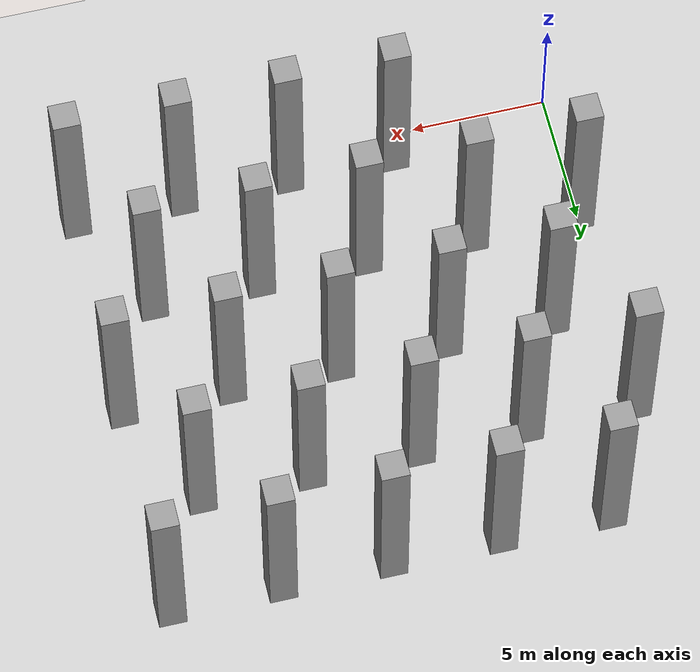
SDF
<sdf version="1.7">
 <world name="default">
  <model name="ground_plane">
   <static>1</static>
   <link name="link">
    <collision name="collision">
     <geometry><plane><normal>0 0 1</normal><size>100 100</size></plane></geometry>
     <surface>
      <contact><collide_bitmask>65535</collide_bitmask></contact>
      <friction><ode><mu>100</mu><mu2>50</mu2></ode></friction>
     </surface>
    </collision>
    <visual name="visual">
     <cast_shadows>0</cast_shadows>
     <geometry><plane><normal>0 0 1</normal><size>100 100</size></plane></geometry>
     <material>
      <script><uri>file://media/materials/scripts/gazebo.material</uri><name>Gazebo/Grey</name></script>
     </material>
    </visual>
   </link>
  </model>
  <model name="unit_box_static54">
   <link name="link">
    <inertial>
     <mass>1</mass>
     <inertia>
      <ixx>0.166667</ixx>
      <ixy>0</ixy>
      <ixz>0</ixz>
      <iyy>0.166667</iyy>
      <iyz>0</iyz>
      <izz>0.166667</izz>
     </inertia>
    </inertial>
    <visual name="visual">
     <geometry><box><size>1 1 8</size></box></geometry>
     <material>
      <script><name>Gazebo/Grey</name><uri>file://media/materials/scripts/gazebo.material</uri></script>
      <shader type="pixel"/>
     </material>
    </visual>
    <collision name="collision">
     <geometry><box><size>1 1 8</size></box></geometry>
     <surface>
      <friction>
       <ode><mu>1</mu><mu2>1</mu2><fdir1>0 0 0</fdir1><slip1>0</slip1><slip2>0</slip2></ode>
       <torsional>
        <coefficient>1</coefficient>
        <patch_radius>0</patch_radius>
        <surface_radius>0</surface_radius>
        <use_patch_radius>1</use_patch_radius>
        <ode><slip>0</slip></ode>
       </torsional>
      </friction>
      <bounce><restitution_coefficient>0</restitution_coefficient><threshold>1e+06</threshold></bounce>
      <contact>
       <collide_without_contact>0</collide_without_contact>
       <collide_without_contact_bitmask>1</collide_without_contact_bitmask>
       <collide_bitmask>1</collide_bitmask>
       <ode>
        <soft_cfm>0</soft_cfm>
        <soft_erp>0.2</soft_erp>
        <kp>1e+13</kp>
        <kd>1</kd>
        <max_vel>0.01</max_vel>
        <min_depth>0</min_depth>
       </ode>
       <bullet>
        <split_impulse>1</split_impulse>
        <split_impulse_penetration_threshold>-0.01</split_impulse_penetration_threshold>
        <soft_cfm>0</soft_cfm>
        <soft_erp>0.2</soft_erp>
        <kp>1e+13</kp>
        <kd>1</kd>
       </bullet>
      </contact>
     </surface>
    </collision>
   </link>
   <static>1</static>
   <pose>6 1 4 0 -0 0</pose>
  </model>
  <model name="unit_box_static55">
   <link name="link">
    <inertial>
     <mass>1</mass>
     <inertia>
      <ixx>0.166667</ixx>
      <ixy>0</ixy>
      <ixz>0</ixz>
      <iyy>0.166667</iyy>
      <iyz>0</iyz>
      <izz>0.166667</izz>
     </inertia>
    </inertial>
    <visual name="visual">
     <geometry><box><size>1 1 8</size></box></geometry>
     <material>
      <script><name>Gazebo/Grey</name><uri>file://media/materials/scripts/gazebo.material</uri></script>
      <shader type="pixel"/>
     </material>
    </visual>
    <collision name="collision">
     <geometry><box><size>1 1 8</size></box></geometry>
     <surface>
      <friction>
       <ode><mu>1</mu><mu2>1</mu2><fdir1>0 0 0</fdir1><slip1>0</slip1><slip2>0</slip2></ode>
       <torsional>
        <coefficient>1</coefficient>
        <patch_radius>0</patch_radius>
        <surface_radius>0</surface_radius>
        <use_patch_radius>1</use_patch_radius>
        <ode><slip>0</slip></ode>
       </torsional>
      </friction>
      <bounce><restitution_coefficient>0</restitution_coefficient><threshold>1e+06</threshold></bounce>
      <contact>
       <collide_without_contact>0</collide_without_contact>
       <collide_without_contact_bitmask>1</collide_without_contact_bitmask>
       <collide_bitmask>1</collide_bitmask>
       <ode>
        <soft_cfm>0</soft_cfm>
        <soft_erp>0.2</soft_erp>
        <kp>1e+13</kp>
        <kd>1</kd>
        <max_vel>0.01</max_vel>
        <min_depth>0</min_depth>
       </ode>
       <bullet>
        <split_impulse>1</split_impulse>
        <split_impulse_penetration_threshold>-0.01</split_impulse_penetration_threshold>
        <soft_cfm>0</soft_cfm>
        <soft_erp>0.2</soft_erp>
        <kp>1e+13</kp>
        <kd>1</kd>
       </bullet>
      </contact>
     </surface>
    </collision>
   </link>
   <static>1</static>
   <pose>10 1 4 0 -0 0</pose>
  </model>
  <model name="unit_box_static56">
   <link name="link">
    <inertial>
     <mass>1</mass>
     <inertia>
      <ixx>0.166667</ixx>
      <ixy>0</ixy>
      <ixz>0</ixz>
      <iyy>0.166667</iyy>
      <iyz>0</iyz>
      <izz>0.166667</izz>
     </inertia>
    </inertial>
    <visual name="visual">
     <geometry><box><size>1 1 8</size></box></geometry>
     <material>
      <script><name>Gazebo/Grey</name><uri>file://media/materials/scripts/gazebo.material</uri></script>
      <shader type="pixel"/>
     </material>
    </visual>
    <collision name="collision">
     <geometry><box><size>1 1 8</size></box></geometry>
     <surface>
      <friction>
       <ode><mu>1</mu><mu2>1</mu2><fdir1>0 0 0</fdir1><slip1>0</slip1><slip2>0</slip2></ode>
       <torsional>
        <coefficient>1</coefficient>
        <patch_radius>0</patch_radius>
        <surface_radius>0</surface_radius>
        <use_patch_radius>1</use_patch_radius>
        <ode><slip>0</slip></ode>
       </torsional>
      </friction>
      <bounce><restitution_coefficient>0</restitution_coefficient><threshold>1e+06</threshold></bounce>
      <contact>
       <collide_without_contact>0</collide_without_contact>
       <collide_without_contact_bitmask>1</collide_without_contact_bitmask>
       <collide_bitmask>1</collide_bitmask>
       <ode>
        <soft_cfm>0</soft_cfm>
        <soft_erp>0.2</soft_erp>
        <kp>1e+13</kp>
        <kd>1</kd>
        <max_vel>0.01</max_vel>
        <min_depth>0</min_depth>
       </ode>
       <bullet>
        <split_impulse>1</split_impulse>
        <split_impulse_penetration_threshold>-0.01</split_impulse_penetration_threshold>
        <soft_cfm>0</soft_cfm>
        <soft_erp>0.2</soft_erp>
        <kp>1e+13</kp>
        <kd>1</kd>
       </bullet>
      </contact>
     </surface>
    </collision>
   </link>
   <static>1</static>
   <pose>14 1 4 0 -0 0</pose>
  </model>
  <model name="unit_box_static57">
   <link name="link">
    <inertial>
     <mass>1</mass>
     <inertia>
      <ixx>0.166667</ixx>
      <ixy>0</ixy>
      <ixz>0</ixz>
      <iyy>0.166667</iyy>
      <iyz>0</iyz>
      <izz>0.166667</izz>
     </inertia>
    </inertial>
    <visual name="visual">
     <geometry><box><size>1 1 8</size></box></geometry>
     <material>
      <script><name>Gazebo/Grey</name><uri>file://media/materials/scripts/gazebo.material</uri></script>
      <shader type="pixel"/>
     </material>
    </visual>
    <collision name="collision">
     <geometry><box><size>1 1 8</size></box></geometry>
     <surface>
      <friction>
       <ode><mu>1</mu><mu2>1</mu2><fdir1>0 0 0</fdir1><slip1>0</slip1><slip2>0</slip2></ode>
       <torsional>
        <coefficient>1</coefficient>
        <patch_radius>0</patch_radius>
        <surface_radius>0</surface_radius>
        <use_patch_radius>1</use_patch_radius>
        <ode><slip>0</slip></ode>
       </torsional>
      </friction>
      <bounce><restitution_coefficient>0</restitution_coefficient><threshold>1e+06</threshold></bounce>
      <contact>
       <collide_without_contact>0</collide_without_contact>
       <collide_without_contact_bitmask>1</collide_without_contact_bitmask>
       <collide_bitmask>1</collide_bitmask>
       <ode>
        <soft_cfm>0</soft_cfm>
        <soft_erp>0.2</soft_erp>
        <kp>1e+13</kp>
        <kd>1</kd>
        <max_vel>0.01</max_vel>
        <min_depth>0</min_depth>
       </ode>
       <bullet>
        <split_impulse>1</split_impulse>
        <split_impulse_penetration_threshold>-0.01</split_impulse_penetration_threshold>
        <soft_cfm>0</soft_cfm>
        <soft_erp>0.2</soft_erp>
        <kp>1e+13</kp>
        <kd>1</kd>
       </bullet>
      </contact>
     </surface>
    </collision>
   </link>
   <static>1</static>
   <pose>18 1 4 0 -0 0</pose>
  </model>
  <model name="unit_box_static62">
   <link name="link">
    <inertial>
     <mass>1</mass>
     <inertia>
      <ixx>0.166667</ixx>
      <ixy>0</ixy>
      <ixz>0</ixz>
      <iyy>0.166667</iyy>
      <iyz>0</iyz>
      <izz>0.166667</izz>
     </inertia>
    </inertial>
    <visual name="visual">
     <geometry><box><size>1 1 8</size></box></geometry>
     <material>
      <script><name>Gazebo/Grey</name><uri>file://media/materials/scripts/gazebo.material</uri></script>
      <shader type="pixel"/>
     </material>
    </visual>
    <collision name="collision">
     <geometry><box><size>1 1 8</size></box></geometry>
     <surface>
      <friction>
       <ode><mu>1</mu><mu2>1</mu2><fdir1>0 0 0</fdir1><slip1>0</slip1><slip2>0</slip2></ode>
       <torsional>
        <coefficient>1</coefficient>
        <patch_radius>0</patch_radius>
        <surface_radius>0</surface_radius>
        <use_patch_radius>1</use_patch_radius>
        <ode><slip>0</slip></ode>
       </torsional>
      </friction>
      <bounce><restitution_coefficient>0</restitution_coefficient><threshold>1e+06</threshold></bounce>
      <contact>
       <collide_without_contact>0</collide_without_contact>
       <collide_without_contact_bitmask>1</collide_without_contact_bitmask>
       <collide_bitmask>1</collide_bitmask>
       <ode>
        <soft_cfm>0</soft_cfm>
        <soft_erp>0.2</soft_erp>
        <kp>1e+13</kp>
        <kd>1</kd>
        <max_vel>0.01</max_vel>
        <min_depth>0</min_depth>
       </ode>
       <bullet>
        <split_impulse>1</split_impulse>
        <split_impulse_penetration_threshold>-0.01</split_impulse_penetration_threshold>
        <soft_cfm>0</soft_cfm>
        <soft_erp>0.2</soft_erp>
        <kp>1e+13</kp>
        <kd>1</kd>
       </bullet>
      </contact>
     </surface>
    </collision>
   </link>
   <static>1</static>
   <pose>0 5 4 0 -0 0</pose>
  </model>
  <model name="unit_box_static63">
   <link name="link">
    <inertial>
     <mass>1</mass>
     <inertia>
      <ixx>0.166667</ixx>
      <ixy>0</ixy>
      <ixz>0</ixz>
      <iyy>0.166667</iyy>
      <iyz>0</iyz>
      <izz>0.166667</izz>
     </inertia>
    </inertial>
    <visual name="visual">
     <geometry><box><size>1 1 8</size></box></geometry>
     <material>
      <script><name>Gazebo/Grey</name><uri>file://media/materials/scripts/gazebo.material</uri></script>
      <shader type="pixel"/>
     </material>
    </visual>
    <collision name="collision">
     <geometry><box><size>1 1 8</size></box></geometry>
     <surface>
      <friction>
       <ode><mu>1</mu><mu2>1</mu2><fdir1>0 0 0</fdir1><slip1>0</slip1><slip2>0</slip2></ode>
       <torsional>
        <coefficient>1</coefficient>
        <patch_radius>0</patch_radius>
        <surface_radius>0</surface_radius>
        <use_patch_radius>1</use_patch_radius>
        <ode><slip>0</slip></ode>
       </torsional>
      </friction>
      <bounce><restitution_coefficient>0</restitution_coefficient><threshold>1e+06</threshold></bounce>
      <contact>
       <collide_without_contact>0</collide_without_contact>
       <collide_without_contact_bitmask>1</collide_without_contact_bitmask>
       <collide_bitmask>1</collide_bitmask>
       <ode>
        <soft_cfm>0</soft_cfm>
        <soft_erp>0.2</soft_erp>
        <kp>1e+13</kp>
        <kd>1</kd>
        <max_vel>0.01</max_vel>
        <min_depth>0</min_depth>
       </ode>
       <bullet>
        <split_impulse>1</split_impulse>
        <split_impulse_penetration_threshold>-0.01</split_impulse_penetration_threshold>
        <soft_cfm>0</soft_cfm>
        <soft_erp>0.2</soft_erp>
        <kp>1e+13</kp>
        <kd>1</kd>
       </bullet>
      </contact>
     </surface>
    </collision>
   </link>
   <static>1</static>
   <pose>4 5 4 0 -0 0</pose>
  </model>
  <model name="unit_box_static64">
   <link name="link">
    <inertial>
     <mass>1</mass>
     <inertia>
      <ixx>0.166667</ixx>
      <ixy>0</ixy>
      <ixz>0</ixz>
      <iyy>0.166667</iyy>
      <iyz>0</iyz>
      <izz>0.166667</izz>
     </inertia>
    </inertial>
    <visual name="visual">
     <geometry><box><size>1 1 8</size></box></geometry>
     <material>
      <script><name>Gazebo/Grey</name><uri>file://media/materials/scripts/gazebo.material</uri></script>
      <shader type="pixel"/>
     </material>
    </visual>
    <collision name="collision">
     <geometry><box><size>1 1 8</size></box></geometry>
     <surface>
      <friction>
       <ode><mu>1</mu><mu2>1</mu2><fdir1>0 0 0</fdir1><slip1>0</slip1><slip2>0</slip2></ode>
       <torsional>
        <coefficient>1</coefficient>
        <patch_radius>0</patch_radius>
        <surface_radius>0</surface_radius>
        <use_patch_radius>1</use_patch_radius>
        <ode><slip>0</slip></ode>
       </torsional>
      </friction>
      <bounce><restitution_coefficient>0</restitution_coefficient><threshold>1e+06</threshold></bounce>
      <contact>
       <collide_without_contact>0</collide_without_contact>
       <collide_without_contact_bitmask>1</collide_without_contact_bitmask>
       <collide_bitmask>1</collide_bitmask>
       <ode>
        <soft_cfm>0</soft_cfm>
        <soft_erp>0.2</soft_erp>
        <kp>1e+13</kp>
        <kd>1</kd>
        <max_vel>0.01</max_vel>
        <min_depth>0</min_depth>
       </ode>
       <bullet>
        <split_impulse>1</split_impulse>
        <split_impulse_penetration_threshold>-0.01</split_impulse_penetration_threshold>
        <soft_cfm>0</soft_cfm>
        <soft_erp>0.2</soft_erp>
        <kp>1e+13</kp>
        <kd>1</kd>
       </bullet>
      </contact>
     </surface>
    </collision>
   </link>
   <static>1</static>
   <pose>8 5 4 0 -0 0</pose>
  </model>
  <model name="unit_box_static65">
   <link name="link">
    <inertial>
     <mass>1</mass>
     <inertia>
      <ixx>0.166667</ixx>
      <ixy>0</ixy>
      <ixz>0</ixz>
      <iyy>0.166667</iyy>
      <iyz>0</iyz>
      <izz>0.166667</izz>
     </inertia>
    </inertial>
    <visual name="visual">
     <geometry><box><size>1 1 8</size></box></geometry>
     <material>
      <script><name>Gazebo/Grey</name><uri>file://media/materials/scripts/gazebo.material</uri></script>
      <shader type="pixel"/>
     </material>
    </visual>
    <collision name="collision">
     <geometry><box><size>1 1 8</size></box></geometry>
     <surface>
      <friction>
       <ode><mu>1</mu><mu2>1</mu2><fdir1>0 0 0</fdir1><slip1>0</slip1><slip2>0</slip2></ode>
       <torsional>
        <coefficient>1</coefficient>
        <patch_radius>0</patch_radius>
        <surface_radius>0</surface_radius>
        <use_patch_radius>1</use_patch_radius>
        <ode><slip>0</slip></ode>
       </torsional>
      </friction>
      <bounce><restitution_coefficient>0</restitution_coefficient><threshold>1e+06</threshold></bounce>
      <contact>
       <collide_without_contact>0</collide_without_contact>
       <collide_without_contact_bitmask>1</collide_without_contact_bitmask>
       <collide_bitmask>1</collide_bitmask>
       <ode>
        <soft_cfm>0</soft_cfm>
        <soft_erp>0.2</soft_erp>
        <kp>1e+13</kp>
        <kd>1</kd>
        <max_vel>0.01</max_vel>
        <min_depth>0</min_depth>
       </ode>
       <bullet>
        <split_impulse>1</split_impulse>
        <split_impulse_penetration_threshold>-0.01</split_impulse_penetration_threshold>
        <soft_cfm>0</soft_cfm>
        <soft_erp>0.2</soft_erp>
        <kp>1e+13</kp>
        <kd>1</kd>
       </bullet>
      </contact>
     </surface>
    </collision>
   </link>
   <static>1</static>
   <pose>12 5 4 0 -0 0</pose>
  </model>
  <model name="unit_box_static66">
   <link name="link">
    <inertial>
     <mass>1</mass>
     <inertia>
      <ixx>0.166667</ixx>
      <ixy>0</ixy>
      <ixz>0</ixz>
      <iyy>0.166667</iyy>
      <iyz>0</iyz>
      <izz>0.166667</izz>
     </inertia>
    </inertial>
    <visual name="visual">
     <geometry><box><size>1 1 8</size></box></geometry>
     <material>
      <script><name>Gazebo/Grey</name><uri>file://media/materials/scripts/gazebo.material</uri></script>
      <shader type="pixel"/>
     </material>
    </visual>
    <collision name="collision">
     <geometry><box><size>1 1 8</size></box></geometry>
     <surface>
      <friction>
       <ode><mu>1</mu><mu2>1</mu2><fdir1>0 0 0</fdir1><slip1>0</slip1><slip2>0</slip2></ode>
       <torsional>
        <coefficient>1</coefficient>
        <patch_radius>0</patch_radius>
        <surface_radius>0</surface_radius>
        <use_patch_radius>1</use_patch_radius>
        <ode><slip>0</slip></ode>
       </torsional>
      </friction>
      <bounce><restitution_coefficient>0</restitution_coefficient><threshold>1e+06</threshold></bounce>
      <contact>
       <collide_without_contact>0</collide_without_contact>
       <collide_without_contact_bitmask>1</collide_without_contact_bitmask>
       <collide_bitmask>1</collide_bitmask>
       <ode>
        <soft_cfm>0</soft_cfm>
        <soft_erp>0.2</soft_erp>
        <kp>1e+13</kp>
        <kd>1</kd>
        <max_vel>0.01</max_vel>
        <min_depth>0</min_depth>
       </ode>
       <bullet>
        <split_impulse>1</split_impulse>
        <split_impulse_penetration_threshold>-0.01</split_impulse_penetration_threshold>
        <soft_cfm>0</soft_cfm>
        <soft_erp>0.2</soft_erp>
        <kp>1e+13</kp>
        <kd>1</kd>
       </bullet>
      </contact>
     </surface>
    </collision>
   </link>
   <static>1</static>
   <pose>16 5 4 0 -0 0</pose>
  </model>
  <model name="unit_box_static72">
   <link name="link">
    <inertial>
     <mass>1</mass>
     <inertia>
      <ixx>0.166667</ixx>
      <ixy>0</ixy>
      <ixz>0</ixz>
      <iyy>0.166667</iyy>
      <iyz>0</iyz>
      <izz>0.166667</izz>
     </inertia>
    </inertial>
    <visual name="visual">
     <geometry><box><size>1 1 8</size></box></geometry>
     <material>
      <script><name>Gazebo/Grey</name><uri>file://media/materials/scripts/gazebo.material</uri></script>
      <shader type="pixel"/>
     </material>
    </visual>
    <collision name="collision">
     <geometry><box><size>1 1 8</size></box></geometry>
     <surface>
      <friction>
       <ode><mu>1</mu><mu2>1</mu2><fdir1>0 0 0</fdir1><slip1>0</slip1><slip2>0</slip2></ode>
       <torsional>
        <coefficient>1</coefficient>
        <patch_radius>0</patch_radius>
        <surface_radius>0</surface_radius>
        <use_patch_radius>1</use_patch_radius>
        <ode><slip>0</slip></ode>
       </torsional>
      </friction>
      <bounce><restitution_coefficient>0</restitution_coefficient><threshold>1e+06</threshold></bounce>
      <contact>
       <collide_without_contact>0</collide_without_contact>
       <collide_without_contact_bitmask>1</collide_without_contact_bitmask>
       <collide_bitmask>1</collide_bitmask>
       <ode>
        <soft_cfm>0</soft_cfm>
        <soft_erp>0.2</soft_erp>
        <kp>1e+13</kp>
        <kd>1</kd>
        <max_vel>0.01</max_vel>
        <min_depth>0</min_depth>
       </ode>
       <bullet>
        <split_impulse>1</split_impulse>
        <split_impulse_penetration_threshold>-0.01</split_impulse_penetration_threshold>
        <soft_cfm>0</soft_cfm>
        <soft_erp>0.2</soft_erp>
        <kp>1e+13</kp>
        <kd>1</kd>
       </bullet>
      </contact>
     </surface>
    </collision>
   </link>
   <static>1</static>
   <pose>2 9 4 0 -0 0</pose>
  </model>
  <model name="unit_box_static73">
   <link name="link">
    <inertial>
     <mass>1</mass>
     <inertia>
      <ixx>0.166667</ixx>
      <ixy>0</ixy>
      <ixz>0</ixz>
      <iyy>0.166667</iyy>
      <iyz>0</iyz>
      <izz>0.166667</izz>
     </inertia>
    </inertial>
    <visual name="visual">
     <geometry><box><size>1 1 8</size></box></geometry>
     <material>
      <script><name>Gazebo/Grey</name><uri>file://media/materials/scripts/gazebo.material</uri></script>
      <shader type="pixel"/>
     </material>
    </visual>
    <collision name="collision">
     <geometry><box><size>1 1 8</size></box></geometry>
     <surface>
      <friction>
       <ode><mu>1</mu><mu2>1</mu2><fdir1>0 0 0</fdir1><slip1>0</slip1><slip2>0</slip2></ode>
       <torsional>
        <coefficient>1</coefficient>
        <patch_radius>0</patch_radius>
        <surface_radius>0</surface_radius>
        <use_patch_radius>1</use_patch_radius>
        <ode><slip>0</slip></ode>
       </torsional>
      </friction>
      <bounce><restitution_coefficient>0</restitution_coefficient><threshold>1e+06</threshold></bounce>
      <contact>
       <collide_without_contact>0</collide_without_contact>
       <collide_without_contact_bitmask>1</collide_without_contact_bitmask>
       <collide_bitmask>1</collide_bitmask>
       <ode>
        <soft_cfm>0</soft_cfm>
        <soft_erp>0.2</soft_erp>
        <kp>1e+13</kp>
        <kd>1</kd>
        <max_vel>0.01</max_vel>
        <min_depth>0</min_depth>
       </ode>
       <bullet>
        <split_impulse>1</split_impulse>
        <split_impulse_penetration_threshold>-0.01</split_impulse_penetration_threshold>
        <soft_cfm>0</soft_cfm>
        <soft_erp>0.2</soft_erp>
        <kp>1e+13</kp>
        <kd>1</kd>
       </bullet>
      </contact>
     </surface>
    </collision>
   </link>
   <static>1</static>
   <pose>6 9 4 0 -0 0</pose>
  </model>
  <model name="unit_box_static74">
   <link name="link">
    <inertial>
     <mass>1</mass>
     <inertia>
      <ixx>0.166667</ixx>
      <ixy>0</ixy>
      <ixz>0</ixz>
      <iyy>0.166667</iyy>
      <iyz>0</iyz>
      <izz>0.166667</izz>
     </inertia>
    </inertial>
    <visual name="visual">
     <geometry><box><size>1 1 8</size></box></geometry>
     <material>
      <script><name>Gazebo/Grey</name><uri>file://media/materials/scripts/gazebo.material</uri></script>
      <shader type="pixel"/>
     </material>
    </visual>
    <collision name="collision">
     <geometry><box><size>1 1 8</size></box></geometry>
     <surface>
      <friction>
       <ode><mu>1</mu><mu2>1</mu2><fdir1>0 0 0</fdir1><slip1>0</slip1><slip2>0</slip2></ode>
       <torsional>
        <coefficient>1</coefficient>
        <patch_radius>0</patch_radius>
        <surface_radius>0</surface_radius>
        <use_patch_radius>1</use_patch_radius>
        <ode><slip>0</slip></ode>
       </torsional>
      </friction>
      <bounce><restitution_coefficient>0</restitution_coefficient><threshold>1e+06</threshold></bounce>
      <contact>
       <collide_without_contact>0</collide_without_contact>
       <collide_without_contact_bitmask>1</collide_without_contact_bitmask>
       <collide_bitmask>1</collide_bitmask>
       <ode>
        <soft_cfm>0</soft_cfm>
        <soft_erp>0.2</soft_erp>
        <kp>1e+13</kp>
        <kd>1</kd>
        <max_vel>0.01</max_vel>
        <min_depth>0</min_depth>
       </ode>
       <bullet>
        <split_impulse>1</split_impulse>
        <split_impulse_penetration_threshold>-0.01</split_impulse_penetration_threshold>
        <soft_cfm>0</soft_cfm>
        <soft_erp>0.2</soft_erp>
        <kp>1e+13</kp>
        <kd>1</kd>
       </bullet>
      </contact>
     </surface>
    </collision>
   </link>
   <static>1</static>
   <pose>10 9 4 0 -0 0</pose>
  </model>
  <model name="unit_box_static75">
   <link name="link">
    <inertial>
     <mass>1</mass>
     <inertia>
      <ixx>0.166667</ixx>
      <ixy>0</ixy>
      <ixz>0</ixz>
      <iyy>0.166667</iyy>
      <iyz>0</iyz>
      <izz>0.166667</izz>
     </inertia>
    </inertial>
    <visual name="visual">
     <geometry><box><size>1 1 8</size></box></geometry>
     <material>
      <script><name>Gazebo/Grey</name><uri>file://media/materials/scripts/gazebo.material</uri></script>
      <shader type="pixel"/>
     </material>
    </visual>
    <collision name="collision">
     <geometry><box><size>1 1 8</size></box></geometry>
     <surface>
      <friction>
       <ode><mu>1</mu><mu2>1</mu2><fdir1>0 0 0</fdir1><slip1>0</slip1><slip2>0</slip2></ode>
       <torsional>
        <coefficient>1</coefficient>
        <patch_radius>0</patch_radius>
        <surface_radius>0</surface_radius>
        <use_patch_radius>1</use_patch_radius>
        <ode><slip>0</slip></ode>
       </torsional>
      </friction>
      <bounce><restitution_coefficient>0</restitution_coefficient><threshold>1e+06</threshold></bounce>
      <contact>
       <collide_without_contact>0</collide_without_contact>
       <collide_without_contact_bitmask>1</collide_without_contact_bitmask>
       <collide_bitmask>1</collide_bitmask>
       <ode>
        <soft_cfm>0</soft_cfm>
        <soft_erp>0.2</soft_erp>
        <kp>1e+13</kp>
        <kd>1</kd>
        <max_vel>0.01</max_vel>
        <min_depth>0</min_depth>
       </ode>
       <bullet>
        <split_impulse>1</split_impulse>
        <split_impulse_penetration_threshold>-0.01</split_impulse_penetration_threshold>
        <soft_cfm>0</soft_cfm>
        <soft_erp>0.2</soft_erp>
        <kp>1e+13</kp>
        <kd>1</kd>
       </bullet>
      </contact>
     </surface>
    </collision>
   </link>
   <static>1</static>
   <pose>14 9 4 0 -0 0</pose>
  </model>
  <model name="unit_box_static76">
   <link name="link">
    <inertial>
     <mass>1</mass>
     <inertia>
      <ixx>0.166667</ixx>
      <ixy>0</ixy>
      <ixz>0</ixz>
      <iyy>0.166667</iyy>
      <iyz>0</iyz>
      <izz>0.166667</izz>
     </inertia>
    </inertial>
    <visual name="visual">
     <geometry><box><size>1 1 8</size></box></geometry>
     <material>
      <script><name>Gazebo/Grey</name><uri>file://media/materials/scripts/gazebo.material</uri></script>
      <shader type="pixel"/>
     </material>
    </visual>
    <collision name="collision">
     <geometry><box><size>1 1 8</size></box></geometry>
     <surface>
      <friction>
       <ode><mu>1</mu><mu2>1</mu2><fdir1>0 0 0</fdir1><slip1>0</slip1><slip2>0</slip2></ode>
       <torsional>
        <coefficient>1</coefficient>
        <patch_radius>0</patch_radius>
        <surface_radius>0</surface_radius>
        <use_patch_radius>1</use_patch_radius>
        <ode><slip>0</slip></ode>
       </torsional>
      </friction>
      <bounce><restitution_coefficient>0</restitution_coefficient><threshold>1e+06</threshold></bounce>
      <contact>
       <collide_without_contact>0</collide_without_contact>
       <collide_without_contact_bitmask>1</collide_without_contact_bitmask>
       <collide_bitmask>1</collide_bitmask>
       <ode>
        <soft_cfm>0</soft_cfm>
        <soft_erp>0.2</soft_erp>
        <kp>1e+13</kp>
        <kd>1</kd>
        <max_vel>0.01</max_vel>
        <min_depth>0</min_depth>
       </ode>
       <bullet>
        <split_impulse>1</split_impulse>
        <split_impulse_penetration_threshold>-0.01</split_impulse_penetration_threshold>
        <soft_cfm>0</soft_cfm>
        <soft_erp>0.2</soft_erp>
        <kp>1e+13</kp>
        <kd>1</kd>
       </bullet>
      </contact>
     </surface>
    </collision>
   </link>
   <static>1</static>
   <pose>18 9 4 0 -0 0</pose>
  </model>
  <model name="unit_box_static81">
   <link name="link">
    <inertial>
     <mass>1</mass>
     <inertia>
      <ixx>0.166667</ixx>
      <ixy>0</ixy>
      <ixz>0</ixz>
      <iyy>0.166667</iyy>
      <iyz>0</iyz>
      <izz>0.166667</izz>
     </inertia>
    </inertial>
    <visual name="visual">
     <geometry><box><size>1 1 8</size></box></geometry>
     <material>
      <script><name>Gazebo/Grey</name><uri>file://media/materials/scripts/gazebo.material</uri></script>
      <shader type="pixel"/>
     </material>
    </visual>
    <collision name="collision">
     <geometry><box><size>1 1 8</size></box></geometry>
     <surface>
      <friction>
       <ode><mu>1</mu><mu2>1</mu2><fdir1>0 0 0</fdir1><slip1>0</slip1><slip2>0</slip2></ode>
       <torsional>
        <coefficient>1</coefficient>
        <patch_radius>0</patch_radius>
        <surface_radius>0</surface_radius>
        <use_patch_radius>1</use_patch_radius>
        <ode><slip>0</slip></ode>
       </torsional>
      </friction>
      <bounce><restitution_coefficient>0</restitution_coefficient><threshold>1e+06</threshold></bounce>
      <contact>
       <collide_without_contact>0</collide_without_contact>
       <collide_without_contact_bitmask>1</collide_without_contact_bitmask>
       <collide_bitmask>1</collide_bitmask>
       <ode>
        <soft_cfm>0</soft_cfm>
        <soft_erp>0.2</soft_erp>
        <kp>1e+13</kp>
        <kd>1</kd>
        <max_vel>0.01</max_vel>
        <min_depth>0</min_depth>
       </ode>
       <bullet>
        <split_impulse>1</split_impulse>
        <split_impulse_penetration_threshold>-0.01</split_impulse_penetration_threshold>
        <soft_cfm>0</soft_cfm>
        <soft_erp>0.2</soft_erp>
        <kp>1e+13</kp>
        <kd>1</kd>
       </bullet>
      </contact>
     </surface>
    </collision>
   </link>
   <static>1</static>
   <pose>0 13 4 0 -0 0</pose>
  </model>
  <model name="unit_box_static82">
   <link name="link">
    <inertial>
     <mass>1</mass>
     <inertia>
      <ixx>0.166667</ixx>
      <ixy>0</ixy>
      <ixz>0</ixz>
      <iyy>0.166667</iyy>
      <iyz>0</iyz>
      <izz>0.166667</izz>
     </inertia>
    </inertial>
    <visual name="visual">
     <geometry><box><size>1 1 8</size></box></geometry>
     <material>
      <script><name>Gazebo/Grey</name><uri>file://media/materials/scripts/gazebo.material</uri></script>
      <shader type="pixel"/>
     </material>
    </visual>
    <collision name="collision">
     <geometry><box><size>1 1 8</size></box></geometry>
     <surface>
      <friction>
       <ode><mu>1</mu><mu2>1</mu2><fdir1>0 0 0</fdir1><slip1>0</slip1><slip2>0</slip2></ode>
       <torsional>
        <coefficient>1</coefficient>
        <patch_radius>0</patch_radius>
        <surface_radius>0</surface_radius>
        <use_patch_radius>1</use_patch_radius>
        <ode><slip>0</slip></ode>
       </torsional>
      </friction>
      <bounce><restitution_coefficient>0</restitution_coefficient><threshold>1e+06</threshold></bounce>
      <contact>
       <collide_without_contact>0</collide_without_contact>
       <collide_without_contact_bitmask>1</collide_without_contact_bitmask>
       <collide_bitmask>1</collide_bitmask>
       <ode>
        <soft_cfm>0</soft_cfm>
        <soft_erp>0.2</soft_erp>
        <kp>1e+13</kp>
        <kd>1</kd>
        <max_vel>0.01</max_vel>
        <min_depth>0</min_depth>
       </ode>
       <bullet>
        <split_impulse>1</split_impulse>
        <split_impulse_penetration_threshold>-0.01</split_impulse_penetration_threshold>
        <soft_cfm>0</soft_cfm>
        <soft_erp>0.2</soft_erp>
        <kp>1e+13</kp>
        <kd>1</kd>
       </bullet>
      </contact>
     </surface>
    </collision>
   </link>
   <static>1</static>
   <pose>4 13 4 0 -0 0</pose>
  </model>
  <model name="unit_box_static83">
   <link name="link">
    <inertial>
     <mass>1</mass>
     <inertia>
      <ixx>0.166667</ixx>
      <ixy>0</ixy>
      <ixz>0</ixz>
      <iyy>0.166667</iyy>
      <iyz>0</iyz>
      <izz>0.166667</izz>
     </inertia>
    </inertial>
    <visual name="visual">
     <geometry><box><size>1 1 8</size></box></geometry>
     <material>
      <script><name>Gazebo/Grey</name><uri>file://media/materials/scripts/gazebo.material</uri></script>
      <shader type="pixel"/>
     </material>
    </visual>
    <collision name="collision">
     <geometry><box><size>1 1 8</size></box></geometry>
     <surface>
      <friction>
       <ode><mu>1</mu><mu2>1</mu2><fdir1>0 0 0</fdir1><slip1>0</slip1><slip2>0</slip2></ode>
       <torsional>
        <coefficient>1</coefficient>
        <patch_radius>0</patch_radius>
        <surface_radius>0</surface_radius>
        <use_patch_radius>1</use_patch_radius>
        <ode><slip>0</slip></ode>
       </torsional>
      </friction>
      <bounce><restitution_coefficient>0</restitution_coefficient><threshold>1e+06</threshold></bounce>
      <contact>
       <collide_without_contact>0</collide_without_contact>
       <collide_without_contact_bitmask>1</collide_without_contact_bitmask>
       <collide_bitmask>1</collide_bitmask>
       <ode>
        <soft_cfm>0</soft_cfm>
        <soft_erp>0.2</soft_erp>
        <kp>1e+13</kp>
        <kd>1</kd>
        <max_vel>0.01</max_vel>
        <min_depth>0</min_depth>
       </ode>
       <bullet>
        <split_impulse>1</split_impulse>
        <split_impulse_penetration_threshold>-0.01</split_impulse_penetration_threshold>
        <soft_cfm>0</soft_cfm>
        <soft_erp>0.2</soft_erp>
        <kp>1e+13</kp>
        <kd>1</kd>
       </bullet>
      </contact>
     </surface>
    </collision>
   </link>
   <static>1</static>
   <pose>8 13 4 0 -0 0</pose>
  </model>
  <model name="unit_box_static84">
   <link name="link">
    <inertial>
     <mass>1</mass>
     <inertia>
      <ixx>0.166667</ixx>
      <ixy>0</ixy>
      <ixz>0</ixz>
      <iyy>0.166667</iyy>
      <iyz>0</iyz>
      <izz>0.166667</izz>
     </inertia>
    </inertial>
    <visual name="visual">
     <geometry><box><size>1 1 8</size></box></geometry>
     <material>
      <script><name>Gazebo/Grey</name><uri>file://media/materials/scripts/gazebo.material</uri></script>
      <shader type="pixel"/>
     </material>
    </visual>
    <collision name="collision">
     <geometry><box><size>1 1 8</size></box></geometry>
     <surface>
      <friction>
       <ode><mu>1</mu><mu2>1</mu2><fdir1>0 0 0</fdir1><slip1>0</slip1><slip2>0</slip2></ode>
       <torsional>
        <coefficient>1</coefficient>
        <patch_radius>0</patch_radius>
        <surface_radius>0</surface_radius>
        <use_patch_radius>1</use_patch_radius>
        <ode><slip>0</slip></ode>
       </torsional>
      </friction>
      <bounce><restitution_coefficient>0</restitution_coefficient><threshold>1e+06</threshold></bounce>
      <contact>
       <collide_without_contact>0</collide_without_contact>
       <collide_without_contact_bitmask>1</collide_without_contact_bitmask>
       <collide_bitmask>1</collide_bitmask>
       <ode>
        <soft_cfm>0</soft_cfm>
        <soft_erp>0.2</soft_erp>
        <kp>1e+13</kp>
        <kd>1</kd>
        <max_vel>0.01</max_vel>
        <min_depth>0</min_depth>
       </ode>
       <bullet>
        <split_impulse>1</split_impulse>
        <split_impulse_penetration_threshold>-0.01</split_impulse_penetration_threshold>
        <soft_cfm>0</soft_cfm>
        <soft_erp>0.2</soft_erp>
        <kp>1e+13</kp>
        <kd>1</kd>
       </bullet>
      </contact>
     </surface>
    </collision>
   </link>
   <static>1</static>
   <pose>12 13 4 0 -0 0</pose>
  </model>
  <model name="unit_box_static85">
   <link name="link">
    <inertial>
     <mass>1</mass>
     <inertia>
      <ixx>0.166667</ixx>
      <ixy>0</ixy>
      <ixz>0</ixz>
      <iyy>0.166667</iyy>
      <iyz>0</iyz>
      <izz>0.166667</izz>
     </inertia>
    </inertial>
    <visual name="visual">
     <geometry><box><size>1 1 8</size></box></geometry>
     <material>
      <script><name>Gazebo/Grey</name><uri>file://media/materials/scripts/gazebo.material</uri></script>
      <shader type="pixel"/>
     </material>
    </visual>
    <collision name="collision">
     <geometry><box><size>1 1 8</size></box></geometry>
     <surface>
      <friction>
       <ode><mu>1</mu><mu2>1</mu2><fdir1>0 0 0</fdir1><slip1>0</slip1><slip2>0</slip2></ode>
       <torsional>
        <coefficient>1</coefficient>
        <patch_radius>0</patch_radius>
        <surface_radius>0</surface_radius>
        <use_patch_radius>1</use_patch_radius>
        <ode><slip>0</slip></ode>
       </torsional>
      </friction>
      <bounce><restitution_coefficient>0</restitution_coefficient><threshold>1e+06</threshold></bounce>
      <contact>
       <collide_without_contact>0</collide_without_contact>
       <collide_without_contact_bitmask>1</collide_without_contact_bitmask>
       <collide_bitmask>1</collide_bitmask>
       <ode>
        <soft_cfm>0</soft_cfm>
        <soft_erp>0.2</soft_erp>
        <kp>1e+13</kp>
        <kd>1</kd>
        <max_vel>0.01</max_vel>
        <min_depth>0</min_depth>
       </ode>
       <bullet>
        <split_impulse>1</split_impulse>
        <split_impulse_penetration_threshold>-0.01</split_impulse_penetration_threshold>
        <soft_cfm>0</soft_cfm>
        <soft_erp>0.2</soft_erp>
        <kp>1e+13</kp>
        <kd>1</kd>
       </bullet>
      </contact>
     </surface>
    </collision>
   </link>
   <static>1</static>
   <pose>16 13 4 0 -0 0</pose>
  </model>
  <model name="unit_box_static91">
   <link name="link">
    <inertial>
     <mass>1</mass>
     <inertia>
      <ixx>0.166667</ixx>
      <ixy>0</ixy>
      <ixz>0</ixz>
      <iyy>0.166667</iyy>
      <iyz>0</iyz>
      <izz>0.166667</izz>
     </inertia>
    </inertial>
    <visual name="visual">
     <geometry><box><size>1 1 8</size></box></geometry>
     <material>
      <script><name>Gazebo/Grey</name><uri>file://media/materials/scripts/gazebo.material</uri></script>
      <shader type="pixel"/>
     </material>
    </visual>
    <collision name="collision">
     <geometry><box><size>1 1 8</size></box></geometry>
     <surface>
      <friction>
       <ode><mu>1</mu><mu2>1</mu2><fdir1>0 0 0</fdir1><slip1>0</slip1><slip2>0</slip2></ode>
       <torsional>
        <coefficient>1</coefficient>
        <patch_radius>0</patch_radius>
        <surface_radius>0</surface_radius>
        <use_patch_radius>1</use_patch_radius>
        <ode><slip>0</slip></ode>
       </torsional>
      </friction>
      <bounce><restitution_coefficient>0</restitution_coefficient><threshold>1e+06</threshold></bounce>
      <contact>
       <collide_without_contact>0</collide_without_contact>
       <collide_without_contact_bitmask>1</collide_without_contact_bitmask>
       <collide_bitmask>1</collide_bitmask>
       <ode>
        <soft_cfm>0</soft_cfm>
        <soft_erp>0.2</soft_erp>
        <kp>1e+13</kp>
        <kd>1</kd>
        <max_vel>0.01</max_vel>
        <min_depth>0</min_depth>
       </ode>
       <bullet>
        <split_impulse>1</split_impulse>
        <split_impulse_penetration_threshold>-0.01</split_impulse_penetration_threshold>
        <soft_cfm>0</soft_cfm>
        <soft_erp>0.2</soft_erp>
        <kp>1e+13</kp>
        <kd>1</kd>
       </bullet>
      </contact>
     </surface>
    </collision>
   </link>
   <static>1</static>
   <pose>2 17 4 0 -0 0</pose>
  </model>
  <model name="unit_box_static92">
   <link name="link">
    <inertial>
     <mass>1</mass>
     <inertia>
      <ixx>0.166667</ixx>
      <ixy>0</ixy>
      <ixz>0</ixz>
      <iyy>0.166667</iyy>
      <iyz>0</iyz>
      <izz>0.166667</izz>
     </inertia>
    </inertial>
    <visual name="visual">
     <geometry><box><size>1 1 8</size></box></geometry>
     <material>
      <script><name>Gazebo/Grey</name><uri>file://media/materials/scripts/gazebo.material</uri></script>
      <shader type="pixel"/>
     </material>
    </visual>
    <collision name="collision">
     <geometry><box><size>1 1 8</size></box></geometry>
     <surface>
      <friction>
       <ode><mu>1</mu><mu2>1</mu2><fdir1>0 0 0</fdir1><slip1>0</slip1><slip2>0</slip2></ode>
       <torsional>
        <coefficient>1</coefficient>
        <patch_radius>0</patch_radius>
        <surface_radius>0</surface_radius>
        <use_patch_radius>1</use_patch_radius>
        <ode><slip>0</slip></ode>
       </torsional>
      </friction>
      <bounce><restitution_coefficient>0</restitution_coefficient><threshold>1e+06</threshold></bounce>
      <contact>
       <collide_without_contact>0</collide_without_contact>
       <collide_without_contact_bitmask>1</collide_without_contact_bitmask>
       <collide_bitmask>1</collide_bitmask>
       <ode>
        <soft_cfm>0</soft_cfm>
        <soft_erp>0.2</soft_erp>
        <kp>1e+13</kp>
        <kd>1</kd>
        <max_vel>0.01</max_vel>
        <min_depth>0</min_depth>
       </ode>
       <bullet>
        <split_impulse>1</split_impulse>
        <split_impulse_penetration_threshold>-0.01</split_impulse_penetration_threshold>
        <soft_cfm>0</soft_cfm>
        <soft_erp>0.2</soft_erp>
        <kp>1e+13</kp>
        <kd>1</kd>
       </bullet>
      </contact>
     </surface>
    </collision>
   </link>
   <static>1</static>
   <pose>6 17 4 0 -0 0</pose>
  </model>
  <model name="unit_box_static93">
   <link name="link">
    <inertial>
     <mass>1</mass>
     <inertia>
      <ixx>0.166667</ixx>
      <ixy>0</ixy>
      <ixz>0</ixz>
      <iyy>0.166667</iyy>
      <iyz>0</iyz>
      <izz>0.166667</izz>
     </inertia>
    </inertial>
    <visual name="visual">
     <geometry><box><size>1 1 8</size></box></geometry>
     <material>
      <script><name>Gazebo/Grey</name><uri>file://media/materials/scripts/gazebo.material</uri></script>
      <shader type="pixel"/>
     </material>
    </visual>
    <collision name="collision">
     <geometry><box><size>1 1 8</size></box></geometry>
     <surface>
      <friction>
       <ode><mu>1</mu><mu2>1</mu2><fdir1>0 0 0</fdir1><slip1>0</slip1><slip2>0</slip2></ode>
       <torsional>
        <coefficient>1</coefficient>
        <patch_radius>0</patch_radius>
        <surface_radius>0</surface_radius>
        <use_patch_radius>1</use_patch_radius>
        <ode><slip>0</slip></ode>
       </torsional>
      </friction>
      <bounce><restitution_coefficient>0</restitution_coefficient><threshold>1e+06</threshold></bounce>
      <contact>
       <collide_without_contact>0</collide_without_contact>
       <collide_without_contact_bitmask>1</collide_without_contact_bitmask>
       <collide_bitmask>1</collide_bitmask>
       <ode>
        <soft_cfm>0</soft_cfm>
        <soft_erp>0.2</soft_erp>
        <kp>1e+13</kp>
        <kd>1</kd>
        <max_vel>0.01</max_vel>
        <min_depth>0</min_depth>
       </ode>
       <bullet>
        <split_impulse>1</split_impulse>
        <split_impulse_penetration_threshold>-0.01</split_impulse_penetration_threshold>
        <soft_cfm>0</soft_cfm>
        <soft_erp>0.2</soft_erp>
        <kp>1e+13</kp>
        <kd>1</kd>
       </bullet>
      </contact>
     </surface>
    </collision>
   </link>
   <static>1</static>
   <pose>10 17 4 0 -0 0</pose>
  </model>
  <model name="unit_box_static94">
   <link name="link">
    <inertial>
     <mass>1</mass>
     <inertia>
      <ixx>0.166667</ixx>
      <ixy>0</ixy>
      <ixz>0</ixz>
      <iyy>0.166667</iyy>
      <iyz>0</iyz>
      <izz>0.166667</izz>
     </inertia>
    </inertial>
    <visual name="visual">
     <geometry><box><size>1 1 8</size></box></geometry>
     <material>
      <script><name>Gazebo/Grey</name><uri>file://media/materials/scripts/gazebo.material</uri></script>
      <shader type="pixel"/>
     </material>
    </visual>
    <collision name="collision">
     <geometry><box><size>1 1 8</size></box></geometry>
     <surface>
      <friction>
       <ode><mu>1</mu><mu2>1</mu2><fdir1>0 0 0</fdir1><slip1>0</slip1><slip2>0</slip2></ode>
       <torsional>
        <coefficient>1</coefficient>
        <patch_radius>0</patch_radius>
        <surface_radius>0</surface_radius>
        <use_patch_radius>1</use_patch_radius>
        <ode><slip>0</slip></ode>
       </torsional>
      </friction>
      <bounce><restitution_coefficient>0</restitution_coefficient><threshold>1e+06</threshold></bounce>
      <contact>
       <collide_without_contact>0</collide_without_contact>
       <collide_without_contact_bitmask>1</collide_without_contact_bitmask>
       <collide_bitmask>1</collide_bitmask>
       <ode>
        <soft_cfm>0</soft_cfm>
        <soft_erp>0.2</soft_erp>
        <kp>1e+13</kp>
        <kd>1</kd>
        <max_vel>0.01</max_vel>
        <min_depth>0</min_depth>
       </ode>
       <bullet>
        <split_impulse>1</split_impulse>
        <split_impulse_penetration_threshold>-0.01</split_impulse_penetration_threshold>
        <soft_cfm>0</soft_cfm>
        <soft_erp>0.2</soft_erp>
        <kp>1e+13</kp>
        <kd>1</kd>
       </bullet>
      </contact>
     </surface>
    </collision>
   </link>
   <static>1</static>
   <pose>14 17 4 0 -0 0</pose>
  </model>
  <model name="unit_box_static95">
   <link name="link">
    <inertial>
     <mass>1</mass>
     <inertia>
      <ixx>0.166667</ixx>
      <ixy>0</ixy>
      <ixz>0</ixz>
      <iyy>0.166667</iyy>
      <iyz>0</iyz>
      <izz>0.166667</izz>
     </inertia>
    </inertial>
    <visual name="visual">
     <geometry><box><size>1 1 8</size></box></geometry>
     <material>
      <script><name>Gazebo/Grey</name><uri>file://media/materials/scripts/gazebo.material</uri></script>
      <shader type="pixel"/>
     </material>
    </visual>
    <collision name="collision">
     <geometry><box><size>1 1 8</size></box></geometry>
     <surface>
      <friction>
       <ode><mu>1</mu><mu2>1</mu2><fdir1>0 0 0</fdir1><slip1>0</slip1><slip2>0</slip2></ode>
       <torsional>
        <coefficient>1</coefficient>
        <patch_radius>0</patch_radius>
        <surface_radius>0</surface_radius>
        <use_patch_radius>1</use_patch_radius>
        <ode><slip>0</slip></ode>
       </torsional>
      </friction>
      <bounce><restitution_coefficient>0</restitution_coefficient><threshold>1e+06</threshold></bounce>
      <contact>
       <collide_without_contact>0</collide_without_contact>
       <collide_without_contact_bitmask>1</collide_without_contact_bitmask>
       <collide_bitmask>1</collide_bitmask>
       <ode>
        <soft_cfm>0</soft_cfm>
        <soft_erp>0.2</soft_erp>
        <kp>1e+13</kp>
        <kd>1</kd>
        <max_vel>0.01</max_vel>
        <min_depth>0</min_depth>
       </ode>
       <bullet>
        <split_impulse>1</split_impulse>
        <split_impulse_penetration_threshold>-0.01</split_impulse_penetration_threshold>
        <soft_cfm>0</soft_cfm>
        <soft_erp>0.2</soft_erp>
        <kp>1e+13</kp>
        <kd>1</kd>
       </bullet>
      </contact>
     </surface>
    </collision>
   </link>
   <static>1</static>
   <pose>18 17 4 0 -0 0</pose>
  </model>
 </world>
</sdf>
